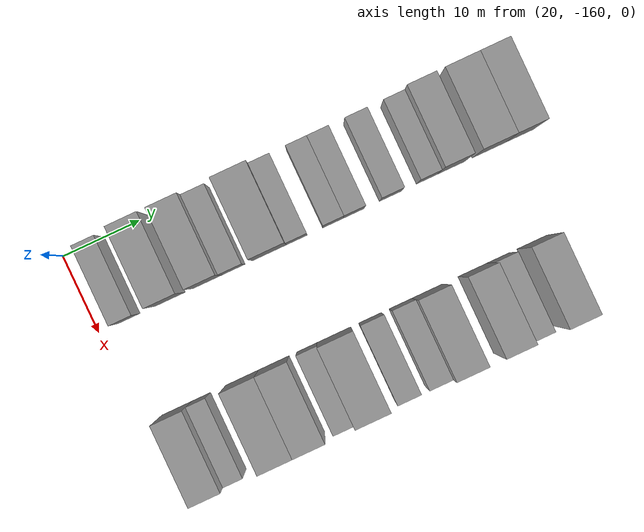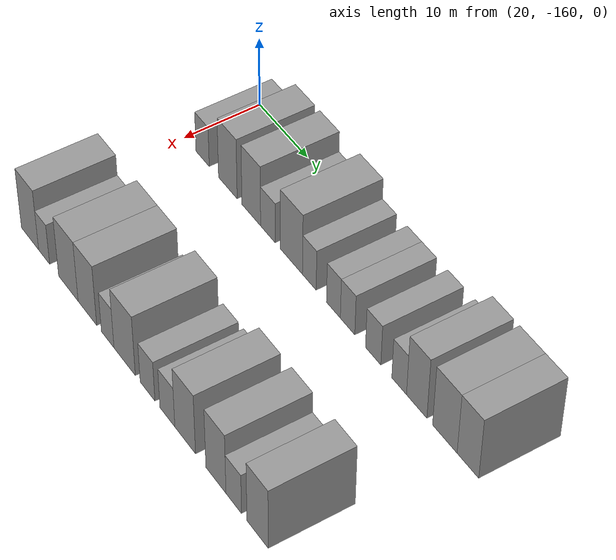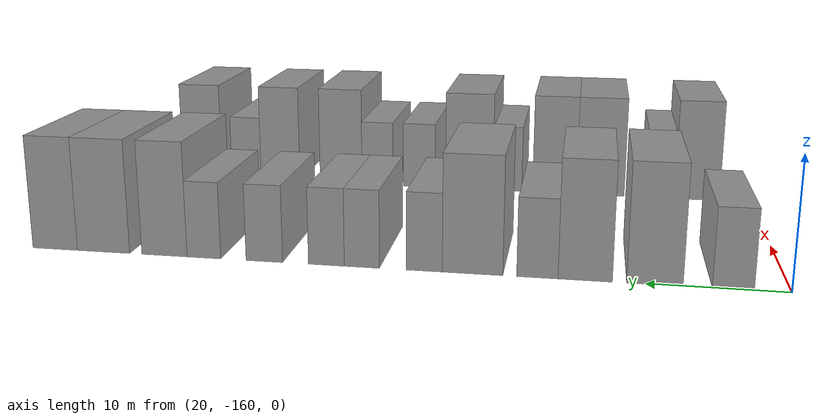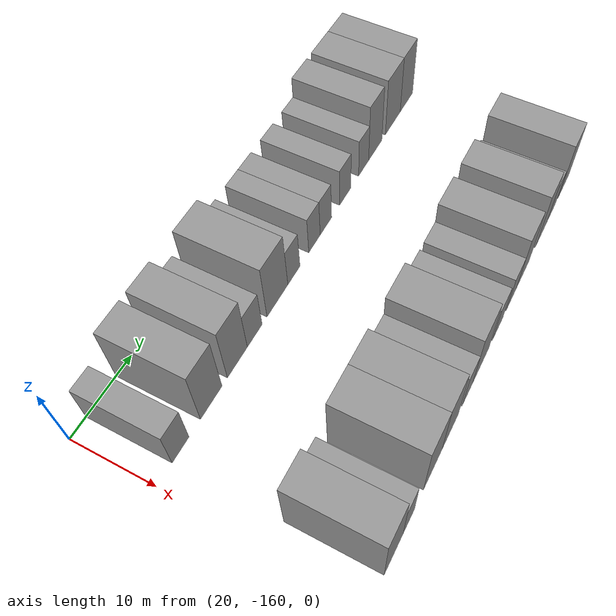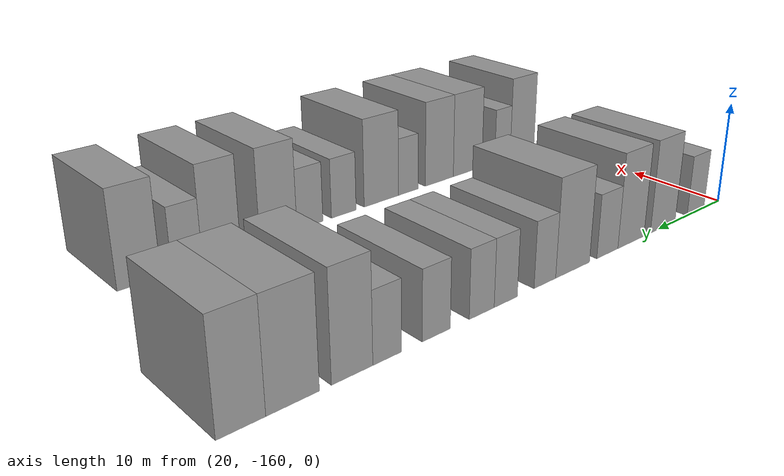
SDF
<sdf version="1.6">
 <world name="default">
  <model name="building_13">
   <static>1</static>
   <pose>25.0000 -156.0359 0 0.000000 0.000000 0.000000</pose>
   <link name="link">
    <pose>0 0 3.00 0 0 0</pose>
    <collision name="collision"><geometry><box><size>10.0000 2.8578 6.0000</size></box></geometry></collision>
    <visual name="visual">
     <cast_shadows>0</cast_shadows>
     <geometry><box><size>10.0000 2.8578 6.0000</size></box></geometry>
     <material>
      <script>
       <uri>model://grey_wall/materials/scripts</uri>
       <uri>model://grey_wall/materials/textures</uri>
       <name>vrc/grey_wall</name>
      </script>
     </material>
    </visual>
   </link>
  </model>
  <model name="building_14">
   <static>1</static>
   <pose>25.0000 -150.6478 0 0.000000 0.000000 0.000000</pose>
   <link name="link">
    <pose>0 0 4.50 0 0 0</pose>
    <collision name="collision"><geometry><box><size>10.0000 3.9184 9.0000</size></box></geometry></collision>
    <visual name="visual">
     <cast_shadows>0</cast_shadows>
     <geometry><box><size>10.0000 3.9184 9.0000</size></box></geometry>
     <material>
      <script>
       <uri>model://grey_wall/materials/scripts</uri>
       <uri>model://grey_wall/materials/textures</uri>
       <name>vrc/grey_wall</name>
      </script>
     </material>
    </visual>
   </link>
  </model>
  <model name="building_15">
   <static>1</static>
   <pose>25.0000 -145.7635 0 0.000000 0.000000 0.000000</pose>
   <link name="link">
    <pose>0 0 4.50 0 0 0</pose>
    <collision name="collision"><geometry><box><size>10.0000 3.8500 9.0000</size></box></geometry></collision>
    <visual name="visual">
     <cast_shadows>0</cast_shadows>
     <geometry><box><size>10.0000 3.8500 9.0000</size></box></geometry>
     <material>
      <script>
       <uri>model://grey_wall/materials/scripts</uri>
       <uri>model://grey_wall/materials/textures</uri>
       <name>vrc/grey_wall</name>
      </script>
     </material>
    </visual>
   </link>
  </model>
  <model name="building_16">
   <static>1</static>
   <pose>25.0000 -142.3542 0 0.000000 0.000000 0.000000</pose>
   <link name="link">
    <pose>0 0 3.00 0 0 0</pose>
    <collision name="collision"><geometry><box><size>10.0000 2.9686 6.0000</size></box></geometry></collision>
    <visual name="visual">
     <cast_shadows>0</cast_shadows>
     <geometry><box><size>10.0000 2.9686 6.0000</size></box></geometry>
     <material>
      <script>
       <uri>model://grey_wall/materials/scripts</uri>
       <uri>model://grey_wall/materials/textures</uri>
       <name>vrc/grey_wall</name>
      </script>
     </material>
    </visual>
   </link>
  </model>
  <model name="building_17">
   <static>1</static>
   <pose>25.0000 -137.6517 0 0.000000 0.000000 0.000000</pose>
   <link name="link">
    <pose>0 0 4.50 0 0 0</pose>
    <collision name="collision"><geometry><box><size>10.0000 4.4365 9.0000</size></box></geometry></collision>
    <visual name="visual">
     <cast_shadows>0</cast_shadows>
     <geometry><box><size>10.0000 4.4365 9.0000</size></box></geometry>
     <material>
      <script>
       <uri>model://grey_wall/materials/scripts</uri>
       <uri>model://grey_wall/materials/textures</uri>
       <name>vrc/grey_wall</name>
      </script>
     </material>
    </visual>
   </link>
  </model>
  <model name="building_18">
   <static>1</static>
   <pose>25.0000 -134.0918 0 0.000000 0.000000 0.000000</pose>
   <link name="link">
    <pose>0 0 3.00 0 0 0</pose>
    <collision name="collision"><geometry><box><size>10.0000 2.6832 6.0000</size></box></geometry></collision>
    <visual name="visual">
     <cast_shadows>0</cast_shadows>
     <geometry><box><size>10.0000 2.6832 6.0000</size></box></geometry>
     <material>
      <script>
       <uri>model://grey_wall/materials/scripts</uri>
       <uri>model://grey_wall/materials/textures</uri>
       <name>vrc/grey_wall</name>
      </script>
     </material>
    </visual>
   </link>
  </model>
  <model name="building_19">
   <static>1</static>
   <pose>25.0000 -129.4211 0 0.000000 0.000000 0.000000</pose>
   <link name="link">
    <pose>0 0 3.00 0 0 0</pose>
    <collision name="collision"><geometry><box><size>10.0000 2.6581 6.0000</size></box></geometry></collision>
    <visual name="visual">
     <cast_shadows>0</cast_shadows>
     <geometry><box><size>10.0000 2.6581 6.0000</size></box></geometry>
     <material>
      <script>
       <uri>model://grey_wall/materials/scripts</uri>
       <uri>model://grey_wall/materials/textures</uri>
       <name>vrc/grey_wall</name>
      </script>
     </material>
    </visual>
   </link>
  </model>
  <model name="building_20">
   <static>1</static>
   <pose>25.0000 -126.7219 0 0.000000 0.000000 0.000000</pose>
   <link name="link">
    <pose>0 0 3.00 0 0 0</pose>
    <collision name="collision"><geometry><box><size>10.0000 2.7403 6.0000</size></box></geometry></collision>
    <visual name="visual">
     <cast_shadows>0</cast_shadows>
     <geometry><box><size>10.0000 2.7403 6.0000</size></box></geometry>
     <material>
      <script>
       <uri>model://grey_wall/materials/scripts</uri>
       <uri>model://grey_wall/materials/textures</uri>
       <name>vrc/grey_wall</name>
      </script>
     </material>
    </visual>
   </link>
  </model>
  <model name="building_21">
   <static>1</static>
   <pose>25.0000 -121.9303 0 0.000000 0.000000 0.000000</pose>
   <link name="link">
    <pose>0 0 3.00 0 0 0</pose>
    <collision name="collision"><geometry><box><size>10.0000 2.8429 6.0000</size></box></geometry></collision>
    <visual name="visual">
     <cast_shadows>0</cast_shadows>
     <geometry><box><size>10.0000 2.8429 6.0000</size></box></geometry>
     <material>
      <script>
       <uri>model://grey_wall/materials/scripts</uri>
       <uri>model://grey_wall/materials/textures</uri>
       <name>vrc/grey_wall</name>
      </script>
     </material>
    </visual>
   </link>
  </model>
  <model name="building_22">
   <static>1</static>
   <pose>25.0000 -117.1746 0 0.000000 0.000000 0.000000</pose>
   <link name="link">
    <pose>0 0 3.00 0 0 0</pose>
    <collision name="collision"><geometry><box><size>10.0000 2.6685 6.0000</size></box></geometry></collision>
    <visual name="visual">
     <cast_shadows>0</cast_shadows>
     <geometry><box><size>10.0000 2.6685 6.0000</size></box></geometry>
     <material>
      <script>
       <uri>model://grey_wall/materials/scripts</uri>
       <uri>model://grey_wall/materials/textures</uri>
       <name>vrc/grey_wall</name>
      </script>
     </material>
    </visual>
   </link>
  </model>
  <model name="building_23">
   <static>1</static>
   <pose>25.0000 -114.0231 0 0.000000 0.000000 0.000000</pose>
   <link name="link">
    <pose>0 0 4.50 0 0 0</pose>
    <collision name="collision"><geometry><box><size>10.0000 3.6344 9.0000</size></box></geometry></collision>
    <visual name="visual">
     <cast_shadows>0</cast_shadows>
     <geometry><box><size>10.0000 3.6344 9.0000</size></box></geometry>
     <material>
      <script>
       <uri>model://grey_wall/materials/scripts</uri>
       <uri>model://grey_wall/materials/textures</uri>
       <name>vrc/grey_wall</name>
      </script>
     </material>
    </visual>
   </link>
  </model>
  <model name="building_24">
   <static>1</static>
   <pose>25.0000 -109.0692 0 0.000000 0.000000 0.000000</pose>
   <link name="link">
    <pose>0 0 4.50 0 0 0</pose>
    <collision name="collision"><geometry><box><size>10.0000 4.2735 9.0000</size></box></geometry></collision>
    <visual name="visual">
     <cast_shadows>0</cast_shadows>
     <geometry><box><size>10.0000 4.2735 9.0000</size></box></geometry>
     <material>
      <script>
       <uri>model://grey_wall/materials/scripts</uri>
       <uri>model://grey_wall/materials/textures</uri>
       <name>vrc/grey_wall</name>
      </script>
     </material>
    </visual>
   </link>
  </model>
  <model name="building_25">
   <static>1</static>
   <pose>25.0000 -105.0818 0 0.000000 0.000000 0.000000</pose>
   <link name="link">
    <pose>0 0 4.50 0 0 0</pose>
    <collision name="collision"><geometry><box><size>10.0000 3.7013 9.0000</size></box></geometry></collision>
    <visual name="visual">
     <cast_shadows>0</cast_shadows>
     <geometry><box><size>10.0000 3.7013 9.0000</size></box></geometry>
     <material>
      <script>
       <uri>model://grey_wall/materials/scripts</uri>
       <uri>model://grey_wall/materials/textures</uri>
       <name>vrc/grey_wall</name>
      </script>
     </material>
    </visual>
   </link>
  </model>
  <model name="building_111">
   <static>1</static>
   <pose>47.0000 -155.4287 0 0.000000 0.000000 0.000000</pose>
   <link name="link">
    <pose>0 0 4.50 0 0 0</pose>
    <collision name="collision"><geometry><box><size>10.0000 3.9085 9.0000</size></box></geometry></collision>
    <visual name="visual">
     <cast_shadows>0</cast_shadows>
     <geometry><box><size>10.0000 3.9085 9.0000</size></box></geometry>
     <material>
      <script>
       <uri>model://grey_wall/materials/scripts</uri>
       <uri>model://grey_wall/materials/textures</uri>
       <name>vrc/grey_wall</name>
      </script>
     </material>
    </visual>
   </link>
  </model>
  <model name="building_112">
   <static>1</static>
   <pose>47.0000 -152.2467 0 0.000000 0.000000 0.000000</pose>
   <link name="link">
    <pose>0 0 3.00 0 0 0</pose>
    <collision name="collision"><geometry><box><size>10.0000 2.4556 6.0000</size></box></geometry></collision>
    <visual name="visual">
     <cast_shadows>0</cast_shadows>
     <geometry><box><size>10.0000 2.4556 6.0000</size></box></geometry>
     <material>
      <script>
       <uri>model://grey_wall/materials/scripts</uri>
       <uri>model://grey_wall/materials/textures</uri>
       <name>vrc/grey_wall</name>
      </script>
     </material>
    </visual>
   </link>
  </model>
  <model name="building_113">
   <static>1</static>
   <pose>47.0000 -146.8812 0 0.000000 0.000000 0.000000</pose>
   <link name="link">
    <pose>0 0 4.50 0 0 0</pose>
    <collision name="collision"><geometry><box><size>10.0000 4.2753 9.0000</size></box></geometry></collision>
    <visual name="visual">
     <cast_shadows>0</cast_shadows>
     <geometry><box><size>10.0000 4.2753 9.0000</size></box></geometry>
     <material>
      <script>
       <uri>model://grey_wall/materials/scripts</uri>
       <uri>model://grey_wall/materials/textures</uri>
       <name>vrc/grey_wall</name>
      </script>
     </material>
    </visual>
   </link>
  </model>
  <model name="building_114">
   <static>1</static>
   <pose>47.0000 -142.7487 0 0.000000 0.000000 0.000000</pose>
   <link name="link">
    <pose>0 0 4.50 0 0 0</pose>
    <collision name="collision"><geometry><box><size>10.0000 3.9898 9.0000</size></box></geometry></collision>
    <visual name="visual">
     <cast_shadows>0</cast_shadows>
     <geometry><box><size>10.0000 3.9898 9.0000</size></box></geometry>
     <material>
      <script>
       <uri>model://grey_wall/materials/scripts</uri>
       <uri>model://grey_wall/materials/textures</uri>
       <name>vrc/grey_wall</name>
      </script>
     </material>
    </visual>
   </link>
  </model>
  <model name="building_115">
   <static>1</static>
   <pose>47.0000 -138.4325 0 0.000000 0.000000 0.000000</pose>
   <link name="link">
    <pose>0 0 3.00 0 0 0</pose>
    <collision name="collision"><geometry><box><size>10.0000 2.6424 6.0000</size></box></geometry></collision>
    <visual name="visual">
     <cast_shadows>0</cast_shadows>
     <geometry><box><size>10.0000 2.6424 6.0000</size></box></geometry>
     <material>
      <script>
       <uri>model://grey_wall/materials/scripts</uri>
       <uri>model://grey_wall/materials/textures</uri>
       <name>vrc/grey_wall</name>
      </script>
     </material>
    </visual>
   </link>
  </model>
  <model name="building_116">
   <static>1</static>
   <pose>47.0000 -134.9033 0 0.000000 0.000000 0.000000</pose>
   <link name="link">
    <pose>0 0 4.50 0 0 0</pose>
    <collision name="collision"><geometry><box><size>10.0000 4.4160 9.0000</size></box></geometry></collision>
    <visual name="visual">
     <cast_shadows>0</cast_shadows>
     <geometry><box><size>10.0000 4.4160 9.0000</size></box></geometry>
     <material>
      <script>
       <uri>model://grey_wall/materials/scripts</uri>
       <uri>model://grey_wall/materials/textures</uri>
       <name>vrc/grey_wall</name>
      </script>
     </material>
    </visual>
   </link>
  </model>
  <model name="building_117">
   <static>1</static>
   <pose>47.0000 -130.2047 0 0.000000 0.000000 0.000000</pose>
   <link name="link">
    <pose>0 0 3.00 0 0 0</pose>
    <collision name="collision"><geometry><box><size>10.0000 2.9813 6.0000</size></box></geometry></collision>
    <visual name="visual">
     <cast_shadows>0</cast_shadows>
     <geometry><box><size>10.0000 2.9813 6.0000</size></box></geometry>
     <material>
      <script>
       <uri>model://grey_wall/materials/scripts</uri>
       <uri>model://grey_wall/materials/textures</uri>
       <name>vrc/grey_wall</name>
      </script>
     </material>
    </visual>
   </link>
  </model>
  <model name="building_118">
   <static>1</static>
   <pose>47.0000 -126.2289 0 0.000000 0.000000 0.000000</pose>
   <link name="link">
    <pose>0 0 3.00 0 0 0</pose>
    <collision name="collision"><geometry><box><size>10.0000 2.9702 6.0000</size></box></geometry></collision>
    <visual name="visual">
     <cast_shadows>0</cast_shadows>
     <geometry><box><size>10.0000 2.9702 6.0000</size></box></geometry>
     <material>
      <script>
       <uri>model://grey_wall/materials/scripts</uri>
       <uri>model://grey_wall/materials/textures</uri>
       <name>vrc/grey_wall</name>
      </script>
     </material>
    </visual>
   </link>
  </model>
  <model name="building_119">
   <static>1</static>
   <pose>47.0000 -122.7245 0 0.000000 0.000000 0.000000</pose>
   <link name="link">
    <pose>0 0 4.50 0 0 0</pose>
    <collision name="collision"><geometry><box><size>10.0000 4.0387 9.0000</size></box></geometry></collision>
    <visual name="visual">
     <cast_shadows>0</cast_shadows>
     <geometry><box><size>10.0000 4.0387 9.0000</size></box></geometry>
     <material>
      <script>
       <uri>model://grey_wall/materials/scripts</uri>
       <uri>model://grey_wall/materials/textures</uri>
       <name>vrc/grey_wall</name>
      </script>
     </material>
    </visual>
   </link>
  </model>
  <model name="building_120">
   <static>1</static>
   <pose>47.0000 -116.8010 0 0.000000 0.000000 0.000000</pose>
   <link name="link">
    <pose>0 0 4.50 0 0 0</pose>
    <collision name="collision"><geometry><box><size>10.0000 3.8083 9.0000</size></box></geometry></collision>
    <visual name="visual">
     <cast_shadows>0</cast_shadows>
     <geometry><box><size>10.0000 3.8083 9.0000</size></box></geometry>
     <material>
      <script>
       <uri>model://grey_wall/materials/scripts</uri>
       <uri>model://grey_wall/materials/textures</uri>
       <name>vrc/grey_wall</name>
      </script>
     </material>
    </visual>
   </link>
  </model>
  <model name="building_121">
   <static>1</static>
   <pose>47.0000 -113.4453 0 0.000000 0.000000 0.000000</pose>
   <link name="link">
    <pose>0 0 3.00 0 0 0</pose>
    <collision name="collision"><geometry><box><size>10.0000 2.9032 6.0000</size></box></geometry></collision>
    <visual name="visual">
     <cast_shadows>0</cast_shadows>
     <geometry><box><size>10.0000 2.9032 6.0000</size></box></geometry>
     <material>
      <script>
       <uri>model://grey_wall/materials/scripts</uri>
       <uri>model://grey_wall/materials/textures</uri>
       <name>vrc/grey_wall</name>
      </script>
     </material>
    </visual>
   </link>
  </model>
  <model name="building_122">
   <static>1</static>
   <pose>47.0000 -109.0428 0 0.000000 0.000000 0.000000</pose>
   <link name="link">
    <pose>0 0 4.50 0 0 0</pose>
    <collision name="collision"><geometry><box><size>10.0000 3.9017 9.0000</size></box></geometry></collision>
    <visual name="visual">
     <cast_shadows>0</cast_shadows>
     <geometry><box><size>10.0000 3.9017 9.0000</size></box></geometry>
     <material>
      <script>
       <uri>model://grey_wall/materials/scripts</uri>
       <uri>model://grey_wall/materials/textures</uri>
       <name>vrc/grey_wall</name>
      </script>
     </material>
    </visual>
   </link>
  </model>
 </world>
</sdf>
